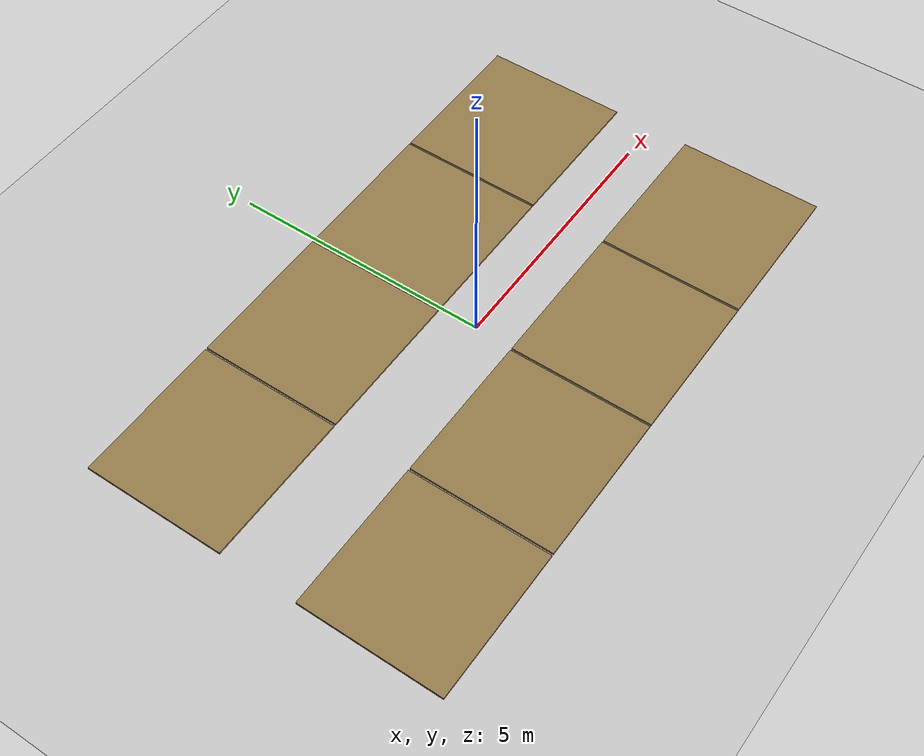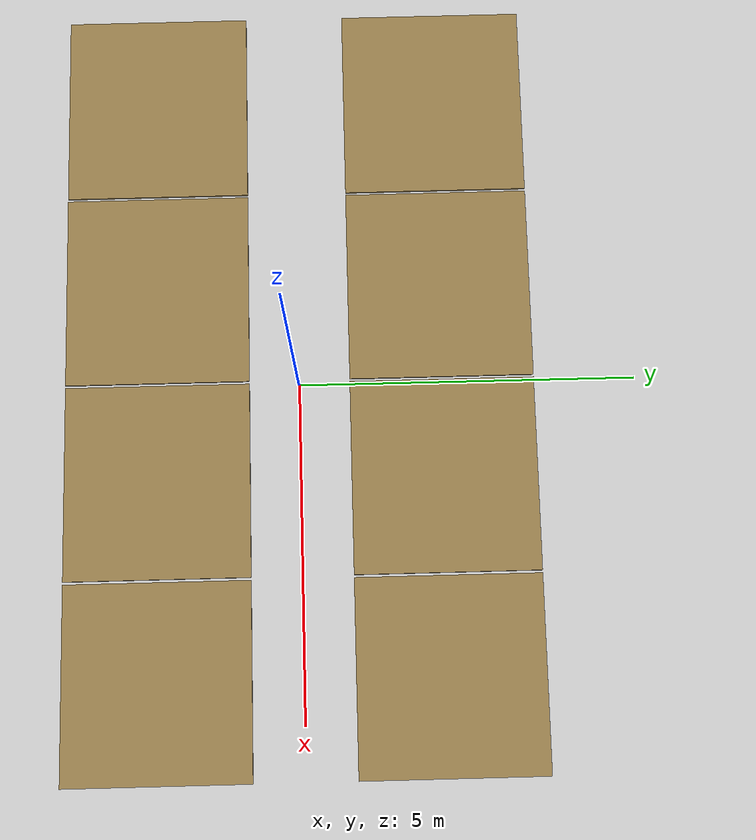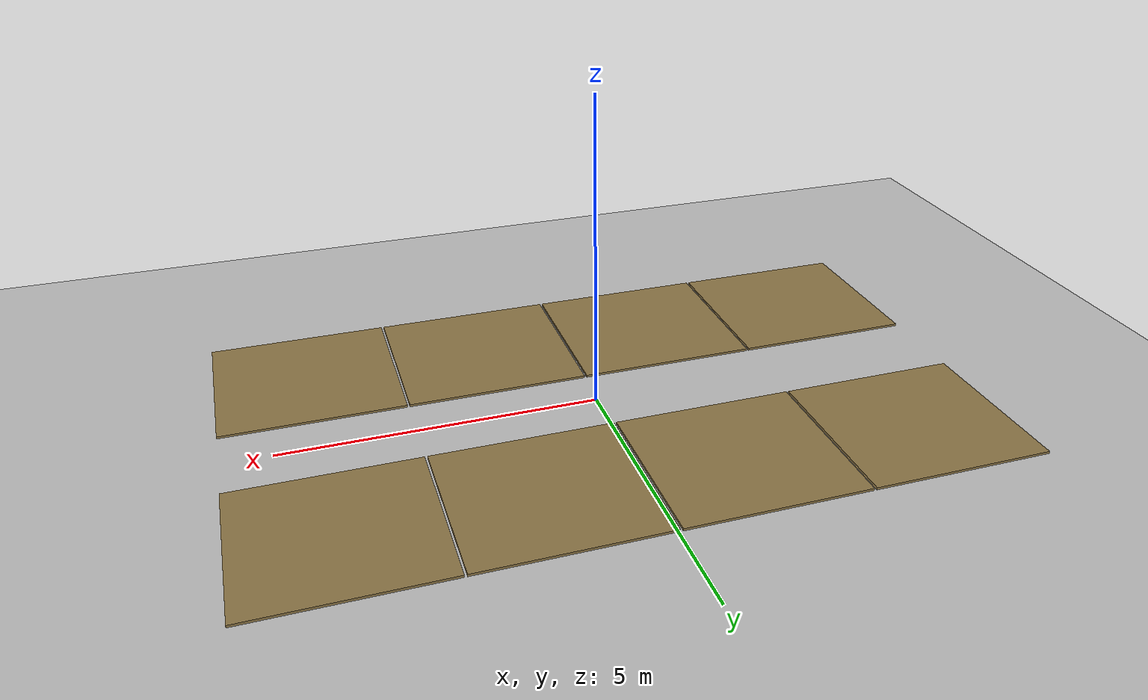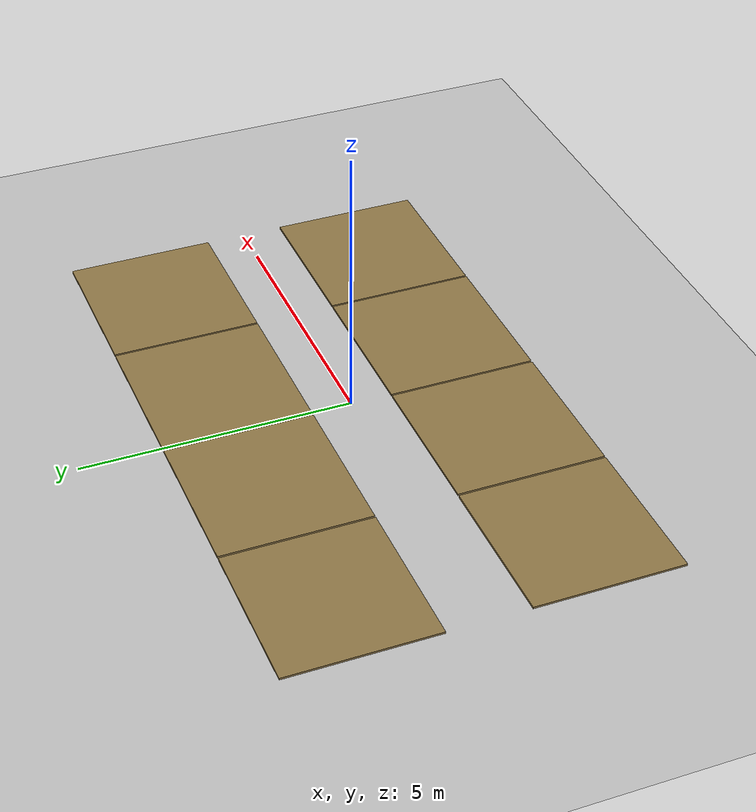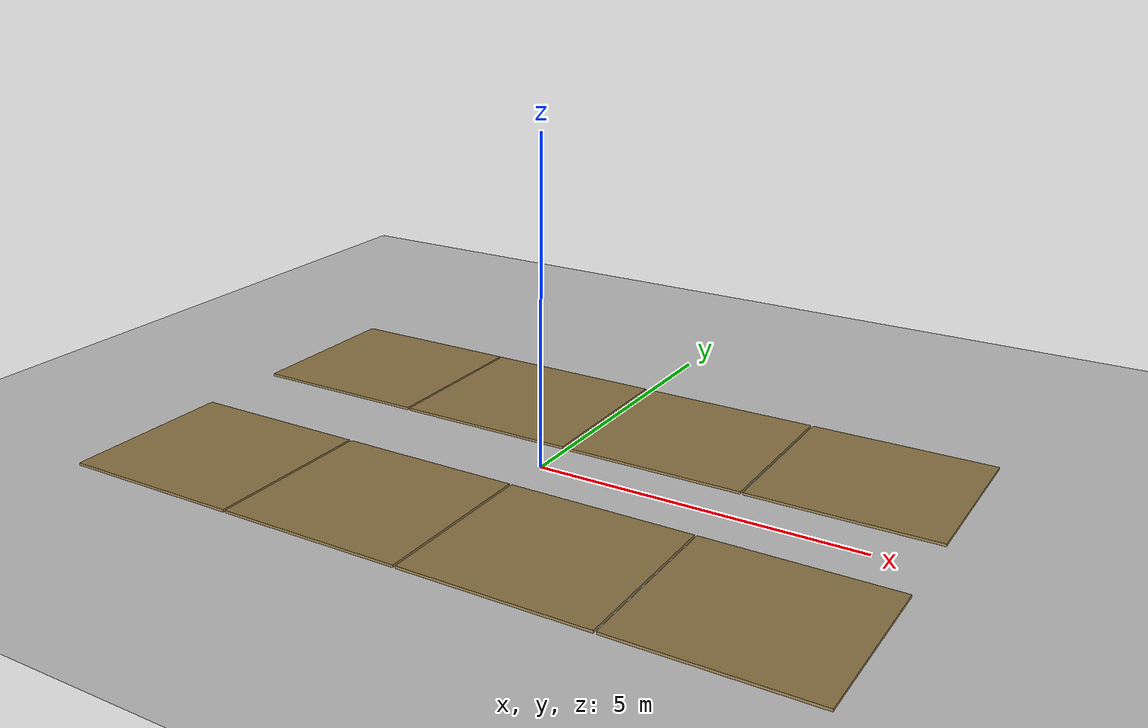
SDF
<?xml version='1.0' encoding='utf-8'?>
<sdf version="1.9">
  <world name="pig_pen_8units_world">
    <gravity>0 0 -9.8</gravity>
    <magnetic_field>0 0 0</magnetic_field>
    <atmosphere type="adiabatic" />
    <plugin filename="gz-sim-physics-system" name="gz::sim::systems::Physics" />
    <plugin filename="gz-sim-sensors-system" name="gz::sim::systems::Sensors">
      <render_engine>ogre2</render_engine>
    </plugin>
    <plugin filename="gz-sim-user-commands-system" name="gz::sim::systems::UserCommands" />
    <plugin filename="gz-sim-scene-broadcaster-system" name="gz::sim::systems::SceneBroadcaster" />
    <light name="sun" type="directional">
      <cast_shadows>true</cast_shadows>
      <pose>0 0 10 0 0 0</pose>
      <diffuse>0.9 0.9 0.9 1</diffuse>
      <specular>0.2 0.2 0.2 1</specular>
      <direction>-0.4 0.1 -1</direction>
    </light>
    <model name="ground_plane">
      <static>true</static>
      <link name="link">
        <collision name="collision">
          <geometry>
            <plane>
              <normal>0 0 1</normal>
              <size>20 20</size>
            </plane>
          </geometry>
        </collision>
        <visual name="visual">
          <geometry>
            <plane>
              <normal>0 0 1</normal>
              <size>20 20</size>
            </plane>
          </geometry>
          <material>
            <ambient>0.8 0.8 0.8 1</ambient>
            <diffuse>0.8 0.8 0.8 1</diffuse>
            <specular>0.2 0.2 0.2 1</specular>
          </material>
        </visual>
      </link>
    </model>

    <model name="pen1">
      <pose>-4.455 2.125 0 0 0 0</pose>
      <static>true</static>

      <link name="floor">
        <pose>0 0 0 0 0 0</pose>
        <visual name="visual">
          <geometry>
            <box>
              <size>2.89 2.75 0.05</size>
            </box>
          </geometry>
          <material>
            <ambient>0.6 0.5 0.3 1</ambient>
            <diffuse>0.6 0.5 0.3 1</diffuse>
          </material>
        </visual>
        <collision name="collision">
          <geometry>
            <box>
              <size>2.89 2.75 0.05</size>
            </box>
          </geometry>
        </collision>
      </link>
    </model>

    <model name="pen2">
      <pose>-1.525 2.125 0 0 0 0</pose>
      <static>true</static>

      <link name="floor">
        <pose>0 0 0 0 0 0</pose>
        <visual name="visual">
          <geometry>
            <box>
              <size>2.89 2.75 0.05</size>
            </box>
          </geometry>
          <material>
            <ambient>0.6 0.5 0.3 1</ambient>
            <diffuse>0.6 0.5 0.3 1</diffuse>
          </material>
        </visual>
        <collision name="collision">
          <geometry>
            <box>
              <size>2.89 2.75 0.05</size>
            </box>
          </geometry>
        </collision>
      </link>
    </model>

    <model name="pen3">
      <pose>1.405 2.125 0 0 0 0</pose>
      <static>true</static>

      <link name="floor">
        <pose>0 0 0 0 0 0</pose>
        <visual name="visual">
          <geometry>
            <box>
              <size>2.89 2.75 0.05</size>
            </box>
          </geometry>
          <material>
            <ambient>0.6 0.5 0.3 1</ambient>
            <diffuse>0.6 0.5 0.3 1</diffuse>
          </material>
        </visual>
        <collision name="collision">
          <geometry>
            <box>
              <size>2.89 2.75 0.05</size>
            </box>
          </geometry>
        </collision>
      </link>
    </model>

    <model name="pen4">
      <pose>4.335 2.125 0 0 0 0</pose>
      <static>true</static>

      <link name="floor">
        <pose>0 0 0 0 0 0</pose>
        <visual name="visual">
          <geometry>
            <box>
              <size>2.89 2.75 0.05</size>
            </box>
          </geometry>
          <material>
            <ambient>0.6 0.5 0.3 1</ambient>
            <diffuse>0.6 0.5 0.3 1</diffuse>
          </material>
        </visual>
        <collision name="collision">
          <geometry>
            <box>
              <size>2.89 2.75 0.05</size>
            </box>
          </geometry>
        </collision>
      </link>
    </model>

    <model name="pen5">
      <pose>-4.455 -2.125 0 0 0 0</pose>
      <static>true</static>

      <link name="floor">
        <pose>0 0 0 0 0 0</pose>
        <visual name="visual">
          <geometry>
            <box>
              <size>2.89 2.75 0.05</size>
            </box>
          </geometry>
          <material>
            <ambient>0.6 0.5 0.3 1</ambient>
            <diffuse>0.6 0.5 0.3 1</diffuse>
          </material>
        </visual>
        <collision name="collision">
          <geometry>
            <box>
              <size>2.89 2.75 0.05</size>
            </box>
          </geometry>
        </collision>
      </link>
    </model>

    <model name="pen6">
      <pose>-1.525 -2.125 0 0 0 0</pose>
      <static>true</static>

      <link name="floor">
        <pose>0 0 0 0 0 0</pose>
        <visual name="visual">
          <geometry>
            <box>
              <size>2.89 2.75 0.05</size>
            </box>
          </geometry>
          <material>
            <ambient>0.6 0.5 0.3 1</ambient>
            <diffuse>0.6 0.5 0.3 1</diffuse>
          </material>
        </visual>
        <collision name="collision">
          <geometry>
            <box>
              <size>2.89 2.75 0.05</size>
            </box>
          </geometry>
        </collision>
      </link>
    </model>

    <model name="pen7">
      <pose>1.405 -2.125 0 0 0 0</pose>
      <static>true</static>

      <link name="floor">
        <pose>0 0 0 0 0 0</pose>
        <visual name="visual">
          <geometry>
            <box>
              <size>2.89 2.75 0.05</size>
            </box>
          </geometry>
          <material>
            <ambient>0.6 0.5 0.3 1</ambient>
            <diffuse>0.6 0.5 0.3 1</diffuse>
          </material>
        </visual>
        <collision name="collision">
          <geometry>
            <box>
              <size>2.89 2.75 0.05</size>
            </box>
          </geometry>
        </collision>
      </link>
    </model>

    <model name="pen8">
      <pose>4.335 -2.125 0 0 0 0</pose>
      <static>true</static>

      <link name="floor">
        <pose>0 0 0 0 0 0</pose>
        <visual name="visual">
          <geometry>
            <box>
              <size>2.89 2.75 0.05</size>
            </box>
          </geometry>
          <material>
            <ambient>0.6 0.5 0.3 1</ambient>
            <diffuse>0.6 0.5 0.3 1</diffuse>
          </material>
        </visual>
        <collision name="collision">
          <geometry>
            <box>
              <size>2.89 2.75 0.05</size>
            </box>
          </geometry>
        </collision>
      </link>
    </model>
  </world>
</sdf>
